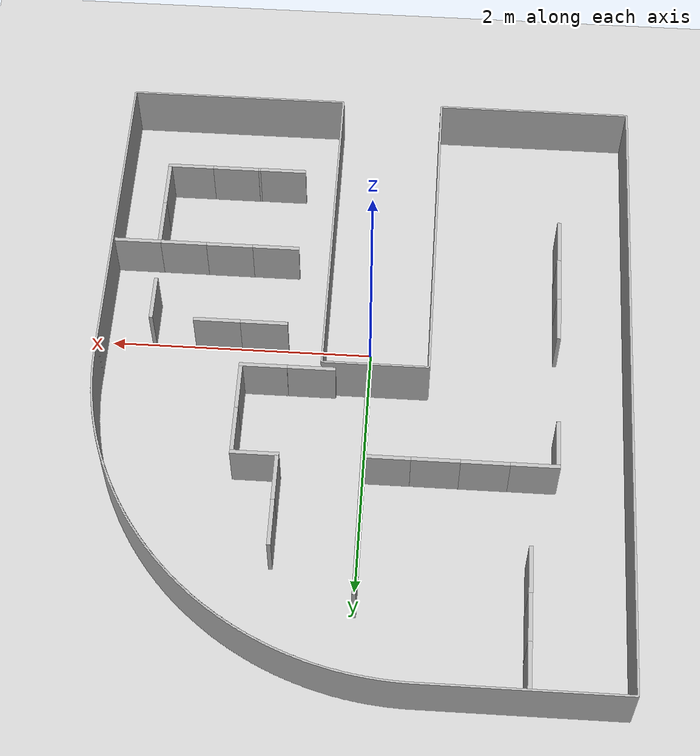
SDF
<sdf version="1.7">
 <world name="default">
  <light name="sun" type="directional">
   <pose>0 0 10 0 -0 0</pose>
   <diffuse>0.8 0.8 0.8 1</diffuse>
   <specular>0.2 0.2 0.2 1</specular>
   <attenuation>
    <range>1000</range>
    <constant>0.9</constant>
    <linear>0.01</linear>
    <quadratic>0.001</quadratic>
   </attenuation>
   <direction>-0.5 0.1 -0.9</direction>
   <spot><inner_angle>0</inner_angle><outer_angle>0</outer_angle><falloff>0</falloff></spot>
  </light>
  <model name="ground_plane">
   <static>1</static>
   <link name="link">
    <collision name="collision">
     <geometry><plane><normal>0 0 1</normal><size>100 100</size></plane></geometry>
     <surface>
      <contact><collide_bitmask>65535</collide_bitmask></contact>
      <friction><ode><mu>100</mu><mu2>50</mu2></ode></friction>
     </surface>
    </collision>
    <visual name="visual">
     <cast_shadows>0</cast_shadows>
     <geometry><plane><normal>0 0 1</normal><size>100 100</size></plane></geometry>
     <material>
      <script><uri>file://media/materials/scripts/gazebo.material</uri><name>Gazebo/Grey</name></script>
     </material>
    </visual>
   </link>
  </model>
  <gravity>0 0 -9.8</gravity>
  <magnetic_field>6e-06 2.3e-05 -4.2e-05</magnetic_field>
  <atmosphere type="adiabatic"/>
  <physics type="ode">
   <max_step_size>0.001</max_step_size>
   <real_time_factor>1</real_time_factor>
   <real_time_update_rate>1000</real_time_update_rate>
  </physics>
  <scene><ambient>0.4 0.4 0.4 1</ambient><background>0.7 0.7 0.7 1</background><shadows>1</shadows></scene>
  <audio><device>default</device></audio>
  <spherical_coordinates>
   <surface_model>EARTH_WGS84</surface_model>
   <latitude_deg>0</latitude_deg>
   <longitude_deg>0</longitude_deg>
   <elevation>0</elevation>
   <heading_deg>0</heading_deg>
  </spherical_coordinates>
  <model name="Arena">
   <static>1</static>
   <link name="link">
    <collision name="collision">
     <pose>0 0 0.212398 1.57 -0 0</pose>
     <geometry><mesh><scale>1 1 1</scale><uri>model://arena/meshes/arena.obj</uri></mesh></geometry>
    </collision>
    <visual name="visual">
     <pose>0 0 0.212398 1.57 -0 0</pose>
     <geometry><mesh><scale>1 1 1</scale><uri>model://arena/meshes/arena.obj</uri></mesh></geometry>
    </visual>
   </link>
   <pose>-0.068836 0.045499 0 0 -0 0</pose>
  </model>
  <model name="Placa1">
   <static>1</static>
   <link name="link">
    <collision name="collision">
     <pose>0 0 0.212398 1.57 -0 0</pose>
     <geometry><mesh><scale>1 1 1</scale><uri>model://placa/meshes/placa.obj</uri></mesh></geometry>
    </collision>
    <visual name="visual">
     <pose>0 0 0.212398 1.57 -0 0</pose>
     <geometry><mesh><scale>1 1 1</scale><uri>model://placa/meshes/placa.obj</uri></mesh></geometry>
    </visual>
   </link>
   <pose>0.784205 0.382248 0 0 -0 1.57</pose>
  </model>
  <model name="Placa2">
   <static>1</static>
   <link name="link">
    <collision name="collision">
     <pose>0 0 0.212398 1.57 -0 0</pose>
     <geometry><mesh><scale>1 1 1</scale><uri>model://placa/meshes/placa.obj</uri></mesh></geometry>
    </collision>
    <visual name="visual">
     <pose>0 0 0.212398 1.57 -0 0</pose>
     <geometry><mesh><scale>1 1 1</scale><uri>model://placa/meshes/placa.obj</uri></mesh></geometry>
    </visual>
   </link>
   <pose>0.421487 0.382249 0 0 -0 1.57</pose>
  </model>
  <model name="Placa5">
   <static>1</static>
   <link name="link">
    <collision name="collision">
     <pose>0 0 0.212398 1.57 -0 0</pose>
     <geometry><mesh><scale>1 1 1</scale><uri>model://placa/meshes/placa.obj</uri></mesh></geometry>
    </collision>
    <visual name="visual">
     <pose>0 0 0.212398 1.57 -0 0</pose>
     <geometry><mesh><scale>1 1 1</scale><uri>model://placa/meshes/placa.obj</uri></mesh></geometry>
    </visual>
   </link>
   <pose>1.85704 -0.701878 0 0 -0 1.57</pose>
  </model>
  <model name="Placa6">
   <static>1</static>
   <link name="link">
    <collision name="collision">
     <pose>0 0 0.212398 1.57 -0 0</pose>
     <geometry><mesh><scale>1 1 1</scale><uri>model://placa/meshes/placa.obj</uri></mesh></geometry>
    </collision>
    <visual name="visual">
     <pose>0 0 0.212398 1.57 -0 0</pose>
     <geometry><mesh><scale>1 1 1</scale><uri>model://placa/meshes/placa.obj</uri></mesh></geometry>
    </visual>
   </link>
   <pose>0.779151 -0.700836 0 0 -0 1.57</pose>
  </model>
  <model name="Placa7">
   <static>1</static>
   <link name="link">
    <collision name="collision">
     <pose>0 0 0.212398 1.57 -0 0</pose>
     <geometry><mesh><scale>1 1 1</scale><uri>model://placa/meshes/placa.obj</uri></mesh></geometry>
    </collision>
    <visual name="visual">
     <pose>0 0 0.212398 1.57 -0 0</pose>
     <geometry><mesh><scale>1 1 1</scale><uri>model://placa/meshes/placa.obj</uri></mesh></geometry>
    </visual>
   </link>
   <pose>1.14006 -0.700535 0 0 -0 1.57</pose>
  </model>
  <model name="Placa8">
   <static>1</static>
   <link name="link">
    <collision name="collision">
     <pose>0 0 0.212398 1.57 -0 0</pose>
     <geometry><mesh><scale>1 1 1</scale><uri>model://placa/meshes/placa.obj</uri></mesh></geometry>
    </collision>
    <visual name="visual">
     <pose>0 0 0.212398 1.57 -0 0</pose>
     <geometry><mesh><scale>1 1 1</scale><uri>model://placa/meshes/placa.obj</uri></mesh></geometry>
    </visual>
   </link>
   <pose>1.49727 -0.701656 0 0 -0 1.57</pose>
  </model>
  <model name="Placa9">
   <static>1</static>
   <link name="link">
    <collision name="collision">
     <pose>0 0 0.212398 1.57 -0 0</pose>
     <geometry><mesh><scale>1 1 1</scale><uri>model://placa/meshes/placa.obj</uri></mesh></geometry>
    </collision>
    <visual name="visual">
     <pose>0 0 0.212398 1.57 -0 0</pose>
     <geometry><mesh><scale>1 1 1</scale><uri>model://placa/meshes/placa.obj</uri></mesh></geometry>
    </visual>
   </link>
   <pose>1.52339 -1.45327 0 0 -0 1.57</pose>
  </model>
  <model name="Placa10">
   <static>1</static>
   <link name="link">
    <collision name="collision">
     <pose>0 0 0.212398 1.57 -0 0</pose>
     <geometry><mesh><scale>1 1 1</scale><uri>model://placa/meshes/placa.obj</uri></mesh></geometry>
    </collision>
    <visual name="visual">
     <pose>0 0 0.212398 1.57 -0 0</pose>
     <geometry><mesh><scale>1 1 1</scale><uri>model://placa/meshes/placa.obj</uri></mesh></geometry>
    </visual>
   </link>
   <pose>1.16215 -1.45299 0 0 -0 1.57</pose>
  </model>
  <model name="Placa11">
   <static>1</static>
   <link name="link">
    <collision name="collision">
     <pose>0 0 0.212398 1.57 -0 0</pose>
     <geometry><mesh><scale>1 1 1</scale><uri>model://placa/meshes/placa.obj</uri></mesh></geometry>
    </collision>
    <visual name="visual">
     <pose>0 0 0.212398 1.57 -0 0</pose>
     <geometry><mesh><scale>1 1 1</scale><uri>model://placa/meshes/placa.obj</uri></mesh></geometry>
    </visual>
   </link>
   <pose>0.801287 -1.45446 0 0 -0 1.57</pose>
  </model>
  <model name="Placa12">
   <static>1</static>
   <link name="link">
    <collision name="collision">
     <pose>0 0 0.212398 1.57 -0 0</pose>
     <geometry><mesh><scale>1 1 1</scale><uri>model://placa/meshes/placa.obj</uri></mesh></geometry>
    </collision>
    <visual name="visual">
     <pose>0 0 0.212398 1.57 -0 0</pose>
     <geometry><mesh><scale>1 1 1</scale><uri>model://placa/meshes/placa.obj</uri></mesh></geometry>
    </visual>
   </link>
   <pose>-1.41837 -0.893186 0 0 -0 0</pose>
  </model>
  <model name="Placa13">
   <static>1</static>
   <link name="link">
    <collision name="collision">
     <pose>0 0 0.212398 1.57 -0 0</pose>
     <geometry><mesh><scale>1 1 1</scale><uri>model://placa/meshes/placa.obj</uri></mesh></geometry>
    </collision>
    <visual name="visual">
     <pose>0 0 0.212398 1.57 -0 0</pose>
     <geometry><mesh><scale>1 1 1</scale><uri>model://placa/meshes/placa.obj</uri></mesh></geometry>
    </visual>
   </link>
   <pose>-1.25356 1.10787 0 0 -0 1.57</pose>
  </model>
  <model name="Placa14">
   <static>1</static>
   <link name="link">
    <collision name="collision">
     <pose>0 0 0.212398 1.57 -0 0</pose>
     <geometry><mesh><scale>1 1 1</scale><uri>model://placa/meshes/placa.obj</uri></mesh></geometry>
    </collision>
    <visual name="visual">
     <pose>0 0 0.212398 1.57 -0 0</pose>
     <geometry><mesh><scale>1 1 1</scale><uri>model://placa/meshes/placa.obj</uri></mesh></geometry>
    </visual>
   </link>
   <pose>-0.892617 1.10841 0 0 -0 1.57</pose>
  </model>
  <model name="Placa15">
   <static>1</static>
   <link name="link">
    <collision name="collision">
     <pose>0 0 0.212398 1.57 -0 0</pose>
     <geometry><mesh><scale>1 1 1</scale><uri>model://placa/meshes/placa.obj</uri></mesh></geometry>
    </collision>
    <visual name="visual">
     <pose>0 0 0.212398 1.57 -0 0</pose>
     <geometry><mesh><scale>1 1 1</scale><uri>model://placa/meshes/placa.obj</uri></mesh></geometry>
    </visual>
   </link>
   <pose>-0.532762 1.10789 0 0 -0 1.57</pose>
  </model>
  <model name="Placa16">
   <static>1</static>
   <link name="link">
    <collision name="collision">
     <pose>0 0 0.212398 1.57 -0 0</pose>
     <geometry><mesh><scale>1 1 1</scale><uri>model://placa/meshes/placa.obj</uri></mesh></geometry>
    </collision>
    <visual name="visual">
     <pose>0 0 0.212398 1.57 -0 0</pose>
     <geometry><mesh><scale>1 1 1</scale><uri>model://placa/meshes/placa.obj</uri></mesh></geometry>
    </visual>
   </link>
   <pose>-0.171002 1.1084 0 0 -0 1.57</pose>
  </model>
  <model name="Placa17">
   <static>1</static>
   <link name="link">
    <collision name="collision">
     <pose>0 0 0.212398 1.57 -0 0</pose>
     <geometry><mesh><scale>1 1 1</scale><uri>model://placa/meshes/placa.obj</uri></mesh></geometry>
    </collision>
    <visual name="visual">
     <pose>0 0 0.212398 1.57 -0 0</pose>
     <geometry><mesh><scale>1 1 1</scale><uri>model://placa/meshes/placa.obj</uri></mesh></geometry>
    </visual>
   </link>
   <pose>0.782999 1.13009 0 0 -0 1.57</pose>
  </model>
  <model name="Placa18">
   <static>1</static>
   <link name="link">
    <collision name="collision">
     <pose>0 0 0.212398 1.57 -0 0</pose>
     <geometry><mesh><scale>1 1 1</scale><uri>model://placa/meshes/placa.obj</uri></mesh></geometry>
    </collision>
    <visual name="visual">
     <pose>0 0 0.212398 1.57 -0 0</pose>
     <geometry><mesh><scale>1 1 1</scale><uri>model://placa/meshes/placa.obj</uri></mesh></geometry>
    </visual>
   </link>
   <pose>-1.4176 -0.532509 0 0 -0 0</pose>
  </model>
  <model name="Placa19">
   <static>1</static>
   <link name="link">
    <collision name="collision">
     <pose>0 0 0.212398 1.57 -0 0</pose>
     <geometry><mesh><scale>1 1 1</scale><uri>model://placa/meshes/placa.obj</uri></mesh></geometry>
    </collision>
    <visual name="visual">
     <pose>0 0 0.212398 1.57 -0 0</pose>
     <geometry><mesh><scale>1 1 1</scale><uri>model://placa/meshes/placa.obj</uri></mesh></geometry>
    </visual>
   </link>
   <pose>-1.41793 -0.172653 0 0 -0 0</pose>
  </model>
  <model name="Placa22">
   <static>1</static>
   <link name="link">
    <collision name="collision">
     <pose>0 0 0.212398 1.57 -0 0</pose>
     <geometry><mesh><scale>1 1 1</scale><uri>model://placa/meshes/placa.obj</uri></mesh></geometry>
    </collision>
    <visual name="visual">
     <pose>0 0 0.212398 1.57 -0 0</pose>
     <geometry><mesh><scale>1 1 1</scale><uri>model://placa/meshes/placa.obj</uri></mesh></geometry>
    </visual>
   </link>
   <pose>-1.4193 0.911773 0 0 -0 0</pose>
  </model>
  <model name="Placa23">
   <static>1</static>
   <link name="link">
    <collision name="collision">
     <pose>0 0 0.212398 1.57 -0 0</pose>
     <geometry><mesh><scale>1 1 1</scale><uri>model://placa/meshes/placa.obj</uri></mesh></geometry>
    </collision>
    <visual name="visual">
     <pose>0 0 0.212398 1.57 -0 0</pose>
     <geometry><mesh><scale>1 1 1</scale><uri>model://placa/meshes/placa.obj</uri></mesh></geometry>
    </visual>
   </link>
   <pose>-0.003877 0.577934 0 0 -0 0</pose>
  </model>
  <model name="Placa24">
   <static>1</static>
   <link name="link">
    <collision name="collision">
     <pose>0 0 0.212398 1.57 -0 0</pose>
     <geometry><mesh><scale>1 1 1</scale><uri>model://placa/meshes/placa.obj</uri></mesh></geometry>
    </collision>
    <visual name="visual">
     <pose>0 0 0.212398 1.57 -0 0</pose>
     <geometry><mesh><scale>1 1 1</scale><uri>model://placa/meshes/placa.obj</uri></mesh></geometry>
    </visual>
   </link>
   <pose>-0.004616 0.939724 0 0 -0 0</pose>
  </model>
  <model name="Placa25">
   <static>1</static>
   <link name="link">
    <collision name="collision">
     <pose>0 0 0.212398 1.57 -0 0</pose>
     <geometry><mesh><scale>1 1 1</scale><uri>model://placa/meshes/placa.obj</uri></mesh></geometry>
    </collision>
    <visual name="visual">
     <pose>0 0 0.212398 1.57 -0 0</pose>
     <geometry><mesh><scale>1 1 1</scale><uri>model://placa/meshes/placa.obj</uri></mesh></geometry>
    </visual>
   </link>
   <pose>0.949598 0.577393 0 0 -0 0</pose>
  </model>
  <model name="Placa26">
   <static>1</static>
   <link name="link">
    <collision name="collision">
     <pose>0 0 0.212398 1.57 -0 0</pose>
     <geometry><mesh><scale>1 1 1</scale><uri>model://placa/meshes/placa.obj</uri></mesh></geometry>
    </collision>
    <visual name="visual">
     <pose>0 0 0.212398 1.57 -0 0</pose>
     <geometry><mesh><scale>1 1 1</scale><uri>model://placa/meshes/placa.obj</uri></mesh></geometry>
    </visual>
   </link>
   <pose>0.94885 0.939051 0 0 -0 0</pose>
  </model>
  <model name="Placa28">
   <static>1</static>
   <link name="link">
    <collision name="collision">
     <pose>0 0 0.212398 1.57 -0 0</pose>
     <geometry><mesh><scale>1 1 1</scale><uri>model://placa/meshes/placa.obj</uri></mesh></geometry>
    </collision>
    <visual name="visual">
     <pose>0 0 0.212398 1.57 -0 0</pose>
     <geometry><mesh><scale>1 1 1</scale><uri>model://placa/meshes/placa.obj</uri></mesh></geometry>
    </visual>
   </link>
   <pose>1.67258 -0.174857 0 0 -0 0</pose>
  </model>
  <model name="Placa29">
   <static>1</static>
   <link name="link">
    <collision name="collision">
     <pose>0 0 0.212398 1.57 -0 0</pose>
     <geometry><mesh><scale>1 1 1</scale><uri>model://placa/meshes/placa.obj</uri></mesh></geometry>
    </collision>
    <visual name="visual">
     <pose>0 0 0.212398 1.57 -0 0</pose>
     <geometry><mesh><scale>1 1 1</scale><uri>model://placa/meshes/placa.obj</uri></mesh></geometry>
    </visual>
   </link>
   <pose>1.68747 -0.898189 0 0 -0 0</pose>
  </model>
  <model name="Placa30">
   <static>1</static>
   <link name="link">
    <collision name="collision">
     <pose>0 0 0.212398 1.57 -0 0</pose>
     <geometry><mesh><scale>1 1 1</scale><uri>model://placa/meshes/placa.obj</uri></mesh></geometry>
    </collision>
    <visual name="visual">
     <pose>0 0 0.212398 1.57 -0 0</pose>
     <geometry><mesh><scale>1 1 1</scale><uri>model://placa/meshes/placa.obj</uri></mesh></geometry>
    </visual>
   </link>
   <pose>1.68783 -1.25999 0 0 -0 0</pose>
  </model>
  <model name="Placa31">
   <static>1</static>
   <link name="link">
    <collision name="collision">
     <pose>0 0 0.212398 1.57 -0 0</pose>
     <geometry><mesh><scale>1 1 1</scale><uri>model://placa/meshes/placa.obj</uri></mesh></geometry>
    </collision>
    <visual name="visual">
     <pose>0 0 0.212398 1.57 -0 0</pose>
     <geometry><mesh><scale>1 1 1</scale><uri>model://placa/meshes/placa.obj</uri></mesh></geometry>
    </visual>
   </link>
   <pose>-0.004867 1.30252 0 0 -0 0</pose>
  </model>
  <model name="Placa32">
   <static>1</static>
   <link name="link">
    <collision name="collision">
     <pose>0 0 0.212398 1.57 -0 0</pose>
     <geometry><mesh><scale>1 1 1</scale><uri>model://placa/meshes/placa.obj</uri></mesh></geometry>
    </collision>
    <visual name="visual">
     <pose>0 0 0.212398 1.57 -0 0</pose>
     <geometry><mesh><scale>1 1 1</scale><uri>model://placa/meshes/placa.obj</uri></mesh></geometry>
    </visual>
   </link>
   <pose>-0.006013 1.66468 0 0 -0 0</pose>
  </model>
  <model name="Placa33">
   <static>1</static>
   <link name="link">
    <collision name="collision">
     <pose>0 0 0.212398 1.57 -0 0</pose>
     <geometry><mesh><scale>1 1 1</scale><uri>model://placa/meshes/placa.obj</uri></mesh></geometry>
    </collision>
    <visual name="visual">
     <pose>0 0 0.212398 1.57 -0 0</pose>
     <geometry><mesh><scale>1 1 1</scale><uri>model://placa/meshes/placa.obj</uri></mesh></geometry>
    </visual>
   </link>
   <pose>0.617279 1.32237 0 0 -0 0</pose>
  </model>
  <model name="Placa34">
   <static>1</static>
   <link name="link">
    <collision name="collision">
     <pose>0 0 0.212398 1.57 -0 0</pose>
     <geometry><mesh><scale>1 1 1</scale><uri>model://placa/meshes/placa.obj</uri></mesh></geometry>
    </collision>
    <visual name="visual">
     <pose>0 0 0.212398 1.57 -0 0</pose>
     <geometry><mesh><scale>1 1 1</scale><uri>model://placa/meshes/placa.obj</uri></mesh></geometry>
    </visual>
   </link>
   <pose>0.616284 1.683 0 0 -0 0</pose>
  </model>
  <model name="Placa35">
   <static>1</static>
   <link name="link">
    <collision name="collision">
     <pose>0 0 0.212398 1.57 -0 0</pose>
     <geometry><mesh><scale>1 1 1</scale><uri>model://placa/meshes/placa.obj</uri></mesh></geometry>
    </collision>
    <visual name="visual">
     <pose>0 0 0.212398 1.57 -0 0</pose>
     <geometry><mesh><scale>1 1 1</scale><uri>model://placa/meshes/placa.obj</uri></mesh></geometry>
    </visual>
   </link>
   <pose>-0.006787 2.02415 0 0 -0 0</pose>
  </model>
  <model name="Placa36">
   <static>1</static>
   <link name="link">
    <collision name="collision">
     <pose>0 0 0.212398 1.57 -0 0</pose>
     <geometry><mesh><scale>1 1 1</scale><uri>model://placa/meshes/placa.obj</uri></mesh></geometry>
    </collision>
    <visual name="visual">
     <pose>0 0 0.212398 1.57 -0 0</pose>
     <geometry><mesh><scale>1 1 1</scale><uri>model://placa/meshes/placa.obj</uri></mesh></geometry>
    </visual>
   </link>
   <pose>-1.23101 2.66094 0 0 -0 0</pose>
  </model>
  <model name="Placa37">
   <static>1</static>
   <link name="link">
    <collision name="collision">
     <pose>0 0 0.212398 1.57 -0 0</pose>
     <geometry><mesh><scale>1 1 1</scale><uri>model://placa/meshes/placa.obj</uri></mesh></geometry>
    </collision>
    <visual name="visual">
     <pose>0 0 0.212398 1.57 -0 0</pose>
     <geometry><mesh><scale>1 1 1</scale><uri>model://placa/meshes/placa.obj</uri></mesh></geometry>
    </visual>
   </link>
   <pose>-1.23015 2.29757 0 0 -0 0</pose>
  </model>
  <model name="Placa38">
   <static>1</static>
   <link name="link">
    <collision name="collision">
     <pose>0 0 0.212398 1.57 -0 0</pose>
     <geometry><mesh><scale>1 1 1</scale><uri>model://placa/meshes/placa.obj</uri></mesh></geometry>
    </collision>
    <visual name="visual">
     <pose>0 0 0.212398 1.57 -0 0</pose>
     <geometry><mesh><scale>1 1 1</scale><uri>model://placa/meshes/placa.obj</uri></mesh></geometry>
    </visual>
   </link>
   <pose>-1.2307 1.93631 0 0 -0 0</pose>
  </model>
  <model name="Placa39">
   <static>1</static>
   <link name="link">
    <collision name="collision">
     <pose>0 0 0.212398 1.57 -0 0</pose>
     <geometry><mesh><scale>1 1 1</scale><uri>model://placa/meshes/placa.obj</uri></mesh></geometry>
    </collision>
    <visual name="visual">
     <pose>0 0 0.212398 1.57 -0 0</pose>
     <geometry><mesh><scale>1 1 1</scale><uri>model://placa/meshes/placa.obj</uri></mesh></geometry>
    </visual>
   </link>
   <pose>0.783625 -1.45445 0 0 -0 1.57</pose>
  </model>
  <model name="Placa3_clone">
   <static>1</static>
   <link name="link">
    <collision name="collision">
     <pose>0 0 0.212398 1.57 -0 0</pose>
     <geometry><mesh><scale>1 1 1</scale><uri>model://placa/meshes/placa.obj</uri></mesh></geometry>
    </collision>
    <visual name="visual">
     <pose>0 0 0.212398 1.57 -0 0</pose>
     <geometry><mesh><scale>1 1 1</scale><uri>model://placa/meshes/placa.obj</uri></mesh></geometry>
    </visual>
   </link>
   <pose>1.16776 -0.000134 0 0 -0 1.57</pose>
  </model>
  <model name="Placa3_clone_clone_clone">
   <static>1</static>
   <link name="link">
    <collision name="collision">
     <pose>0 0 0.212398 1.57 -0 0</pose>
     <geometry><mesh><scale>1 1 1</scale><uri>model://placa/meshes/placa.obj</uri></mesh></geometry>
    </collision>
    <visual name="visual">
     <pose>0 0 0.212398 1.57 -0 0</pose>
     <geometry><mesh><scale>1 1 1</scale><uri>model://placa/meshes/placa.obj</uri></mesh></geometry>
    </visual>
   </link>
   <pose>0.809906 0.000151 0 0 -0 1.57</pose>
  </model>
 </world>
</sdf>
